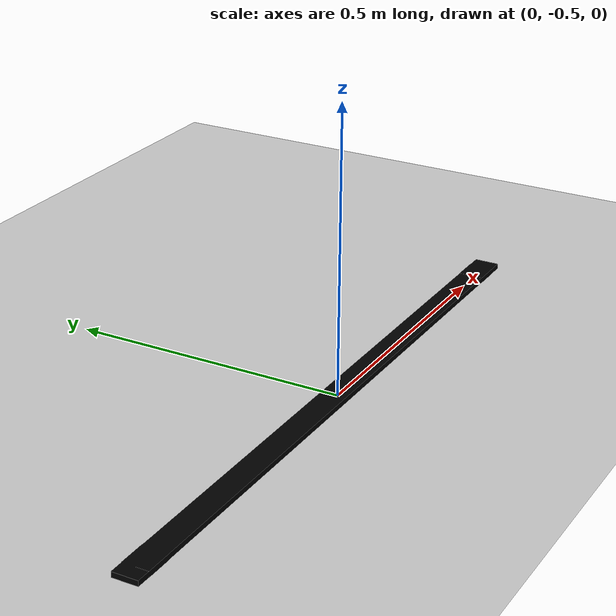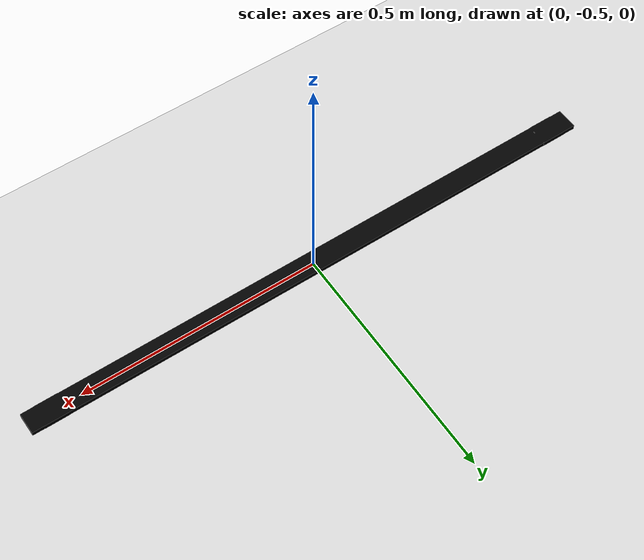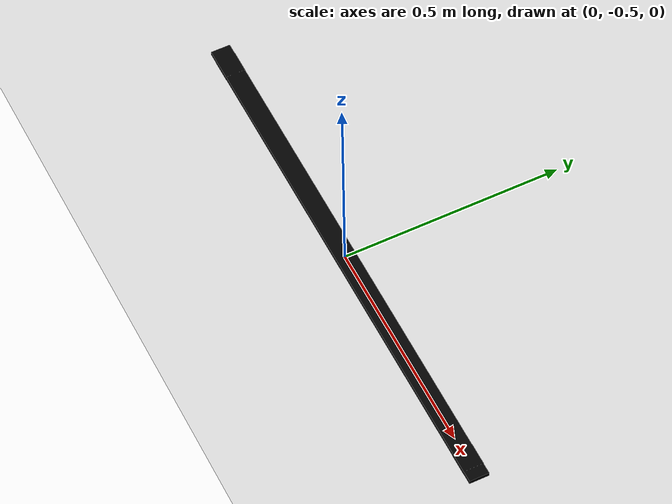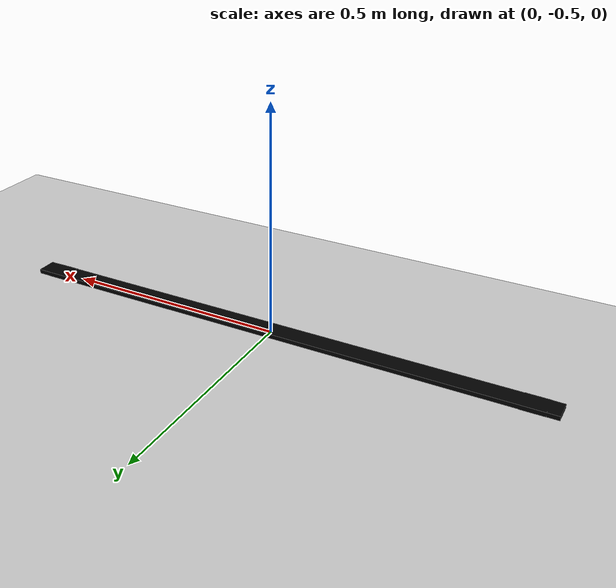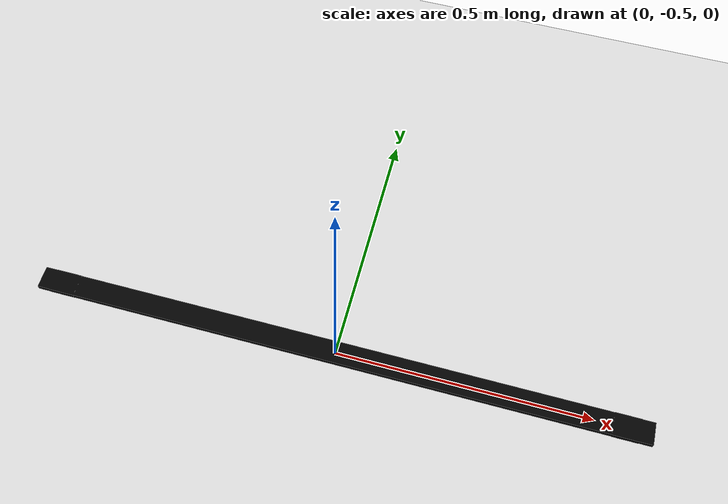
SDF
<sdf version="1.6">
 <world name="default">
  <scene><ambient>0.4 0.4 0.4 1</ambient><background>0.7 0.7 0.7 1</background><shadows>1</shadows></scene>
  <light name="sun" type="directional">
   <pose>0 0 10 0 -0 0</pose>
   <diffuse>0.8 0.8 0.8 1</diffuse>
   <specular>0.2 0.2 0.2 1</specular>
   <attenuation>
    <range>1000</range>
    <constant>0.9</constant>
    <linear>0.01</linear>
    <quadratic>0.001</quadratic>
   </attenuation>
   <direction>-0.5 0.1 -0.9</direction>
  </light>
  <model name="ground_plane">
   <static>1</static>
   <link name="link">
    <collision name="collision">
     <geometry><plane><normal>0 0 1</normal><size>100 100</size></plane></geometry>
     <surface>
      <contact><collide_bitmask>65535</collide_bitmask></contact>
      <friction><ode><mu>100</mu><mu2>50</mu2></ode></friction>
     </surface>
    </collision>
    <visual name="visual">
     <cast_shadows>0</cast_shadows>
     <geometry><plane><normal>0 0 1</normal><size>100 100</size></plane></geometry>
     <material>
      <script><uri>file://media/materials/scripts/gazebo.material</uri><name>Gazebo/Grey</name></script>
     </material>
    </visual>
   </link>
  </model>
  <physics name="default_physics" default="0" type="ode">
   <real_time_update_rate>1000</real_time_update_rate>
   <max_step_size>0.001</max_step_size>
   <real_time_factor>1</real_time_factor>
   <ode>
    <solver>
     <type>quick</type>
     <iters>150</iters>
     <precon_iters>0</precon_iters>
     <sor>1.4</sor>
     <use_dynamic_moi_rescaling>1</use_dynamic_moi_rescaling>
    </solver>
    <constraints>
     <cfm>1e-05</cfm>
     <erp>0.2</erp>
     <contact_max_correcting_vel>2000</contact_max_correcting_vel>
     <contact_surface_layer>0.01</contact_surface_layer>
    </constraints>
   </ode>
  </physics>
  <gravity>0 0 -9.8</gravity>
  <magnetic_field>6e-06 2.3e-05 -4.2e-05</magnetic_field>
  <atmosphere type="adiabatic"/>
  <spherical_coordinates>
   <surface_model>EARTH_WGS84</surface_model>
   <latitude_deg>0</latitude_deg>
   <longitude_deg>0</longitude_deg>
   <elevation>0</elevation>
   <heading_deg>0</heading_deg>
  </spherical_coordinates>
  <model name="1mm_0">
   <link name="link">
    <inertial>
     <mass>1.4111</mass>
     <inertia><ixx>0.0011</ixx><ixy>0</ixy><ixz>0</ixz><iyy>0.1771</iyy><iyz>0</iyz><izz>0.1763</izz></inertia>
    </inertial>
    <visual name="visual">
     <geometry>
      <mesh><uri>model://drc_practice_2x4/meshes/2x4x48.dae</uri><scale>1 0.25 0.5</scale></mesh>
     </geometry>
     <material>
      <shader type="pixel"><normal_map>__default__</normal_map></shader>
      <script><name>ModelPreview_1::link::visual_MATERIAL_</name><uri>__default__</uri></script>
      <ambient>0 0 0 1</ambient>
      <diffuse>0 0 0 1</diffuse>
      <specular>0 0 0 1</specular>
      <emissive>0 0 0 1</emissive>
      <lighting>0</lighting>
     </material>
    </visual>
    <collision name="collision">
     <geometry><box><size>1.2192 0.01 0.045</size></box></geometry>
     <surface>
      <friction>
       <ode><mu>5</mu><mu2>5</mu2><fdir1>0 0 0</fdir1><slip1>0</slip1><slip2>0</slip2></ode>
       <torsional>
        <coefficient>1</coefficient>
        <patch_radius>0</patch_radius>
        <surface_radius>0</surface_radius>
        <use_patch_radius>1</use_patch_radius>
        <ode><slip>0</slip></ode>
       </torsional>
      </friction>
      <bounce><restitution_coefficient>0.01</restitution_coefficient><threshold>5</threshold></bounce>
      <contact>
       <collide_without_contact>0</collide_without_contact>
       <collide_without_contact_bitmask>1</collide_without_contact_bitmask>
       <collide_bitmask>1</collide_bitmask>
       <ode>
        <soft_cfm>0.001</soft_cfm>
        <soft_erp>0.2</soft_erp>
        <kp>10000</kp>
        <kd>1000</kd>
        <max_vel>0.01</max_vel>
        <min_depth>0.001</min_depth>
       </ode>
       <bullet>
        <split_impulse>1</split_impulse>
        <split_impulse_penetration_threshold>-0.01</split_impulse_penetration_threshold>
        <soft_cfm>0.001</soft_cfm>
        <soft_erp>0.2</soft_erp>
        <kp>10000</kp>
        <kd>1000</kd>
       </bullet>
      </contact>
     </surface>
    </collision>
   </link>
   <static>0</static>
   <pose>0 -0.5 0.003655 1.5708 -0 0.000953</pose>
  </model>
 </world>
</sdf>
